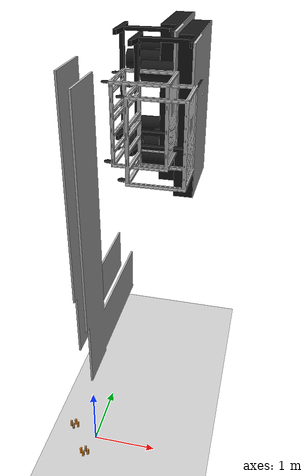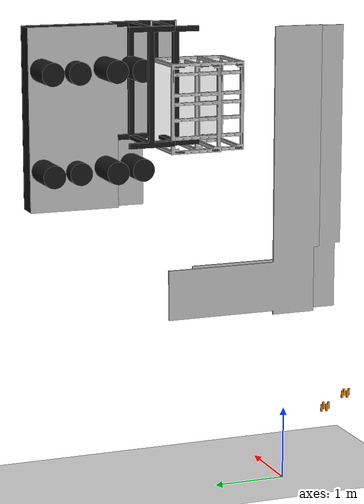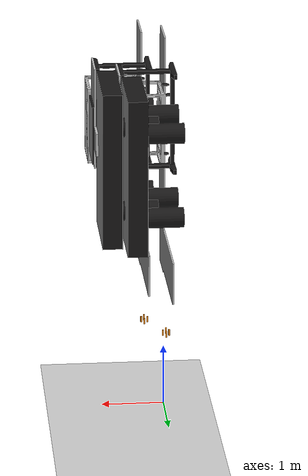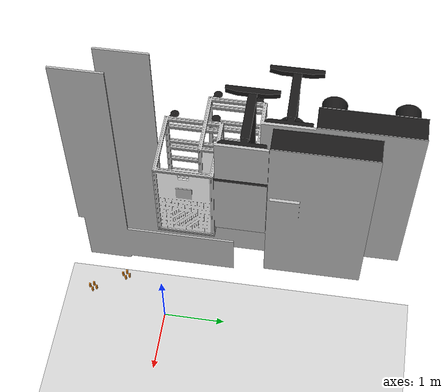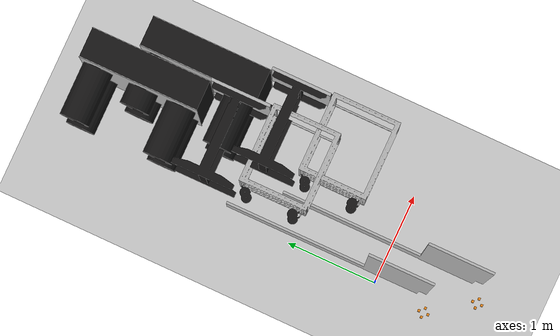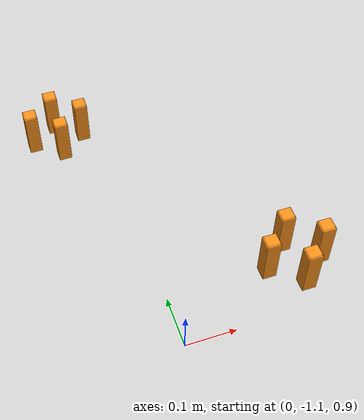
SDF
<sdf version="1.6">
 <world name="default">
  <gravity>0 0 -9.8</gravity>
  <physics type="ode" default="true">
   <ode>
    <solver><type>quick</type><iters>100</iters></solver>
    <constraints><cfm>1</cfm><erp>0.8</erp></constraints>
   </ode>
  </physics>
  <include><uri>model://ground_plane</uri></include>
  <include><uri>model://sun</uri></include>
  <model name="sku_taskfeeder_peg2">
   <include><static>true</static><uri>model://taskboard-squarepeg</uri></include>
   <pose>-0.04808 -0.5891 0.9351 0 0 0</pose>
  </model>
  <model name="sku_taskfeeder_peg4">
   <include><static>true</static><uri>model://taskboard-squarepeg</uri></include>
   <pose>-0.09888 -0.6399 0.9494 0 0 0</pose>
  </model>
  <model name="sku_taskfeeder_peg6">
   <include><static>true</static><uri>model://taskboard-squarepeg</uri></include>
   <pose>-0.09888 -0.5383 0.9222 0 0 0</pose>
  </model>
  <model name="sku_taskfeeder_peg8">
   <include><static>true</static><uri>model://taskboard-squarepeg</uri></include>
   <pose>-0.14968 -0.5891 0.9351 0 0 0</pose>
  </model>
  <model name="sku_fanuctaskfeeder_peg2">
   <include><static>true</static><uri>model://taskboard-squarepeg</uri></include>
   <pose>0.2697	-1.0538	0.991 0 0 0</pose>
  </model>
  <model name="sku_fanuctaskfeeder_peg4">
   <include><static>true</static><uri>model://taskboard-squarepeg</uri></include>
   <pose>0.2189	-1.1046	1.0053 0 0 0</pose>
  </model>
  <model name="sku_fanuctaskfeeder_peg6">
   <include><static>true</static><uri>model://taskboard-squarepeg</uri></include>
   <pose>0.21897	-1.003	0.9781 0 0 0</pose>
  </model>
  <model name="sku_fanuctaskfeeder_peg8">
   <include><static>true</static><uri>model://taskboard-squarepeg</uri></include>
   <pose>0.1681	-1.0538	0.991 0 0 0</pose>
  </model>
  <model name="motoman_camera">
   <static>true</static>
   <link name="camera_link">
    <collision name="collision">
     <geometry><mesh><uri>model://fanuc_camera_test/meshes/new_model.dae</uri></mesh></geometry>
    </collision>
    <visual name="visual">
     <geometry><mesh><uri>model://fanuc_camera_test/meshes/new_model.dae</uri></mesh></geometry>
    </visual>
    <sensor name="CAMERA" type="camera">
     <pose>0 0 0 -1.57 0 -1.57</pose>
     <always_on>true</always_on>
     <update_rate>30.0</update_rate>
     <camera>
      <horizontal_fov>0.837</horizontal_fov>
      <image><width>2048</width><height>2048</height></image>
      <clip><near>0.1</near><far>100</far></clip>
      <noise><type>gaussian</type><mean>0.0</mean><stddev>0.007</stddev></noise>
     </camera>
    </sensor>
   </link>
   <pose>0.030841 -0.690050 2.004990 1.569999 0.000004 1.574377</pose>
  </model>
  <model name="fanuc_camera">
   <static>true</static>
   <link name="camera_link">
    <collision name="collision">
     <geometry><mesh><uri>model://fanuc_camera_test/meshes/new_model.dae</uri></mesh></geometry>
    </collision>
    <visual name="visual">
     <geometry><mesh><uri>model://fanuc_camera_test/meshes/new_model.dae</uri></mesh></geometry>
    </visual>
    <sensor name="CAMERA" type="camera">
     <pose>0 0 0 -1.57 0 -1.57</pose>
     <always_on>true</always_on>
     <update_rate>30.0</update_rate>
     <camera>
      <horizontal_fov>0.837</horizontal_fov>
      <image><width>2048</width><height>2048</height></image>
      <clip><near>0.1</near><far>100</far></clip>
      <noise><type>gaussian</type><mean>0.0</mean><stddev>0.007</stddev></noise>
     </camera>
    </sensor>
   </link>
   <pose>0.359072 -1.157340 1.962610 1.569998 0.000002 1.571644</pose>
  </model>
 </world>
</sdf>

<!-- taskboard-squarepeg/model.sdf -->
<sdf version="1.6">
    <model name="taskboard_squarepeg">
          <static>1</static>
            <link name="link1">
            <pose frame="">0 0 0 0 0 0</pose>
                <velocity_decay>
                    <angular>
             		.0005
             		</angular>
                </velocity_decay>
                <collision name="collision1">
                    <pose frame="">0 0 0 0 0 0</pose>
                    <geometry>
                        <mesh>
                            <scale>0.002 0.002 0.002</scale>
                            <uri>model://taskboard-squarepeg/taskboard_square_peg-1_Rotatex_Centered_ZeroZmin.stl</uri>
                        </mesh>
                    </geometry>
                    <max_contacts>10</max_contacts>
                </collision>
                <visual name="visual1">
                    <pose frame="">0 0 0 0 0 0</pose>
                    <geometry>
                        <mesh>
                            <scale>0.002 0.002 0.002</scale>
                            <uri>model://taskboard-squarepeg/taskboard_square_peg-1_Rotatex_Centered_ZeroZmin.stl</uri>
                        </mesh>
                    </geometry>
                    <material>
                        <script>
                            <name>Gazebo/Orange</name>
                            <uri>__default__</uri>
                        </script>
                    </material>
                </visual>
                <inertial>
                    <mass>0.0385</mass>
                    <inertia>
                        <ixx>4.78233711e+00</ixx>
                        <ixy>2.06443170e-09</ixy>
                        <ixz>3.14256508e-00</ixz>
                        <iyy>4.78233728e+00</iyy>
                        <iyz>1.83990112e-08</iyz>
                        <izz>2.44284722e-01</izz>
                    </inertia>
                </inertial>
                <self_collide>0</self_collide>
               <gravity>0</gravity>
            </link>
    </model>
</sdf>
